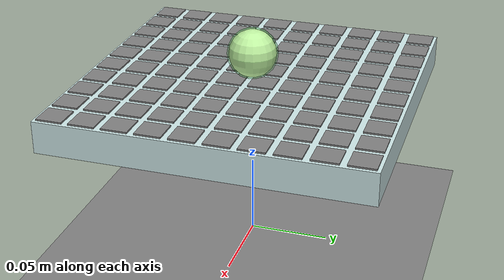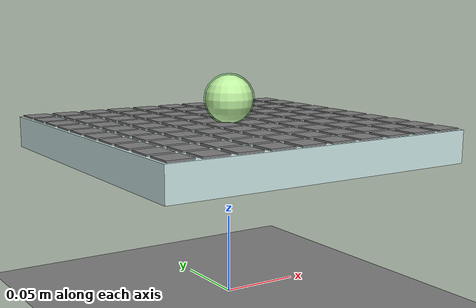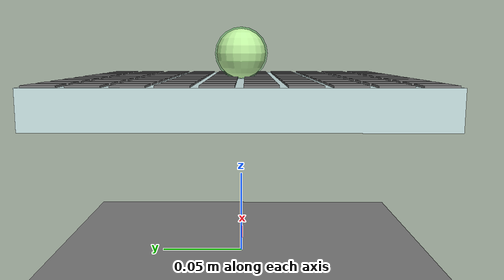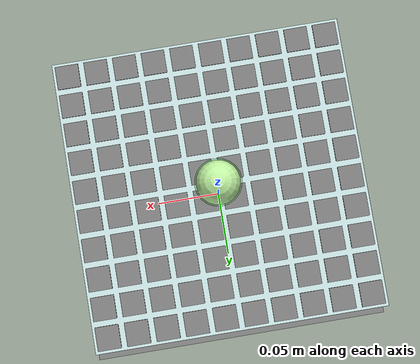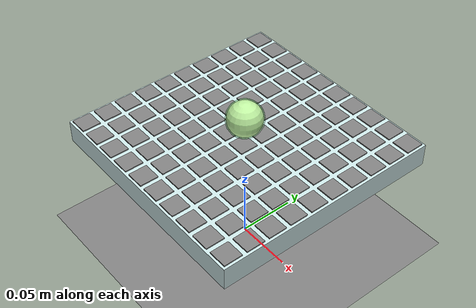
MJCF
<mujoco>
   <compiler angle='radian' meshdir='.' texturedir='.' />

    <worldbody>
        <light directional='false' diffuse='.7 .7 .7' specular='0.03 0.03 0.03' pos='-.1 -.1 1.0' dir='.1 .1 -1'/>
        <geom name='grond' type='plane' size='2 2 .1'/>

        <body name='plate' pos='0 0 .1'>
            <site name='target' pos='0 0 0.025' rgba='0 1 0 .2' size='0.016'/>
            <geom type='box' size='0.1 0.1 0.01' rgba='.8 .9 .9 1'/>
            <joint name='xPlate' damping='.1' type='hinge' axis='1 0 0' limited='true' range='-.5 .5'/>
            <joint name='yPlate' damping='.1' type='hinge' axis='0 1 0' limited='true' range='-.5 .5'/>

            <site name='t00'  type='box' size='0.008 0.008 0.001'  pos='-0.090 -0.090 0.01'/>
            <site name='t01'  type='box' size='0.008 0.008 0.001'  pos='-0.090 -0.070 0.01'/>
            <site name='t02'  type='box' size='0.008 0.008 0.001'  pos='-0.090 -0.050 0.01'/>
            <site name='t03'  type='box' size='0.008 0.008 0.001'  pos='-0.090 -0.030 0.01'/>
            <site name='t04'  type='box' size='0.008 0.008 0.001'  pos='-0.090 -0.010 0.01'/>
            <site name='t05'  type='box' size='0.008 0.008 0.001'  pos='-0.090 0.010 0.01'/>
            <site name='t06'  type='box' size='0.008 0.008 0.001'  pos='-0.090 0.030 0.01'/>
            <site name='t07'  type='box' size='0.008 0.008 0.001'  pos='-0.090 0.050 0.01'/>
            <site name='t08'  type='box' size='0.008 0.008 0.001'  pos='-0.090 0.070 0.01'/>
            <site name='t09'  type='box' size='0.008 0.008 0.001'  pos='-0.090 0.090 0.01'/>
            <site name='t10'  type='box' size='0.008 0.008 0.001'  pos='-0.070 -0.090 0.01'/>
            <site name='t11'  type='box' size='0.008 0.008 0.001'  pos='-0.070 -0.070 0.01'/>
            <site name='t12'  type='box' size='0.008 0.008 0.001'  pos='-0.070 -0.050 0.01'/>
            <site name='t13'  type='box' size='0.008 0.008 0.001'  pos='-0.070 -0.030 0.01'/>
            <site name='t14'  type='box' size='0.008 0.008 0.001'  pos='-0.070 -0.010 0.01'/>
            <site name='t15'  type='box' size='0.008 0.008 0.001'  pos='-0.070 0.010 0.01'/>
            <site name='t16'  type='box' size='0.008 0.008 0.001'  pos='-0.070 0.030 0.01'/>
            <site name='t17'  type='box' size='0.008 0.008 0.001'  pos='-0.070 0.050 0.01'/>
            <site name='t18'  type='box' size='0.008 0.008 0.001'  pos='-0.070 0.070 0.01'/>
            <site name='t19'  type='box' size='0.008 0.008 0.001'  pos='-0.070 0.090 0.01'/>
            <site name='t20'  type='box' size='0.008 0.008 0.001'  pos='-0.050 -0.090 0.01'/>
            <site name='t21'  type='box' size='0.008 0.008 0.001'  pos='-0.050 -0.070 0.01'/>
            <site name='t22'  type='box' size='0.008 0.008 0.001'  pos='-0.050 -0.050 0.01'/>
            <site name='t23'  type='box' size='0.008 0.008 0.001'  pos='-0.050 -0.030 0.01'/>
            <site name='t24'  type='box' size='0.008 0.008 0.001'  pos='-0.050 -0.010 0.01'/>
            <site name='t25'  type='box' size='0.008 0.008 0.001'  pos='-0.050 0.010 0.01'/>
            <site name='t26'  type='box' size='0.008 0.008 0.001'  pos='-0.050 0.030 0.01'/>
            <site name='t27'  type='box' size='0.008 0.008 0.001'  pos='-0.050 0.050 0.01'/>
            <site name='t28'  type='box' size='0.008 0.008 0.001'  pos='-0.050 0.070 0.01'/>
            <site name='t29'  type='box' size='0.008 0.008 0.001'  pos='-0.050 0.090 0.01'/>
            <site name='t30'  type='box' size='0.008 0.008 0.001'  pos='-0.030 -0.090 0.01'/>
            <site name='t31'  type='box' size='0.008 0.008 0.001'  pos='-0.030 -0.070 0.01'/>
            <site name='t32'  type='box' size='0.008 0.008 0.001'  pos='-0.030 -0.050 0.01'/>
            <site name='t33'  type='box' size='0.008 0.008 0.001'  pos='-0.030 -0.030 0.01'/>
            <site name='t34'  type='box' size='0.008 0.008 0.001'  pos='-0.030 -0.010 0.01'/>
            <site name='t35'  type='box' size='0.008 0.008 0.001'  pos='-0.030 0.010 0.01'/>
            <site name='t36'  type='box' size='0.008 0.008 0.001'  pos='-0.030 0.030 0.01'/>
            <site name='t37'  type='box' size='0.008 0.008 0.001'  pos='-0.030 0.050 0.01'/>
            <site name='t38'  type='box' size='0.008 0.008 0.001'  pos='-0.030 0.070 0.01'/>
            <site name='t39'  type='box' size='0.008 0.008 0.001'  pos='-0.030 0.090 0.01'/>
            <site name='t40'  type='box' size='0.008 0.008 0.001'  pos='-0.010 -0.090 0.01'/>
            <site name='t41'  type='box' size='0.008 0.008 0.001'  pos='-0.010 -0.070 0.01'/>
            <site name='t42'  type='box' size='0.008 0.008 0.001'  pos='-0.010 -0.050 0.01'/>
            <site name='t43'  type='box' size='0.008 0.008 0.001'  pos='-0.010 -0.030 0.01'/>
            <site name='t44'  type='box' size='0.008 0.008 0.001'  pos='-0.010 -0.010 0.01'/>
            <site name='t45'  type='box' size='0.008 0.008 0.001'  pos='-0.010 0.010 0.01'/>
            <site name='t46'  type='box' size='0.008 0.008 0.001'  pos='-0.010 0.030 0.01'/>
            <site name='t47'  type='box' size='0.008 0.008 0.001'  pos='-0.010 0.050 0.01'/>
            <site name='t48'  type='box' size='0.008 0.008 0.001'  pos='-0.010 0.070 0.01'/>
            <site name='t49'  type='box' size='0.008 0.008 0.001'  pos='-0.010 0.090 0.01'/>
            <site name='t50'  type='box' size='0.008 0.008 0.001'  pos='0.010 -0.090 0.01'/>
            <site name='t51'  type='box' size='0.008 0.008 0.001'  pos='0.010 -0.070 0.01'/>
            <site name='t52'  type='box' size='0.008 0.008 0.001'  pos='0.010 -0.050 0.01'/>
            <site name='t53'  type='box' size='0.008 0.008 0.001'  pos='0.010 -0.030 0.01'/>
            <site name='t54'  type='box' size='0.008 0.008 0.001'  pos='0.010 -0.010 0.01'/>
            <site name='t55'  type='box' size='0.008 0.008 0.001'  pos='0.010 0.010 0.01'/>
            <site name='t56'  type='box' size='0.008 0.008 0.001'  pos='0.010 0.030 0.01'/>
            <site name='t57'  type='box' size='0.008 0.008 0.001'  pos='0.010 0.050 0.01'/>
            <site name='t58'  type='box' size='0.008 0.008 0.001'  pos='0.010 0.070 0.01'/>
            <site name='t59'  type='box' size='0.008 0.008 0.001'  pos='0.010 0.090 0.01'/>
            <site name='t60'  type='box' size='0.008 0.008 0.001'  pos='0.030 -0.090 0.01'/>
            <site name='t61'  type='box' size='0.008 0.008 0.001'  pos='0.030 -0.070 0.01'/>
            <site name='t62'  type='box' size='0.008 0.008 0.001'  pos='0.030 -0.050 0.01'/>
            <site name='t63'  type='box' size='0.008 0.008 0.001'  pos='0.030 -0.030 0.01'/>
            <site name='t64'  type='box' size='0.008 0.008 0.001'  pos='0.030 -0.010 0.01'/>
            <site name='t65'  type='box' size='0.008 0.008 0.001'  pos='0.030 0.010 0.01'/>
            <site name='t66'  type='box' size='0.008 0.008 0.001'  pos='0.030 0.030 0.01'/>
            <site name='t67'  type='box' size='0.008 0.008 0.001'  pos='0.030 0.050 0.01'/>
            <site name='t68'  type='box' size='0.008 0.008 0.001'  pos='0.030 0.070 0.01'/>
            <site name='t69'  type='box' size='0.008 0.008 0.001'  pos='0.030 0.090 0.01'/>
            <site name='t70'  type='box' size='0.008 0.008 0.001'  pos='0.050 -0.090 0.01'/>
            <site name='t71'  type='box' size='0.008 0.008 0.001'  pos='0.050 -0.070 0.01'/>
            <site name='t72'  type='box' size='0.008 0.008 0.001'  pos='0.050 -0.050 0.01'/>
            <site name='t73'  type='box' size='0.008 0.008 0.001'  pos='0.050 -0.030 0.01'/>
            <site name='t74'  type='box' size='0.008 0.008 0.001'  pos='0.050 -0.010 0.01'/>
            <site name='t75'  type='box' size='0.008 0.008 0.001'  pos='0.050 0.010 0.01'/>
            <site name='t76'  type='box' size='0.008 0.008 0.001'  pos='0.050 0.030 0.01'/>
            <site name='t77'  type='box' size='0.008 0.008 0.001'  pos='0.050 0.050 0.01'/>
            <site name='t78'  type='box' size='0.008 0.008 0.001'  pos='0.050 0.070 0.01'/>
            <site name='t79'  type='box' size='0.008 0.008 0.001'  pos='0.050 0.090 0.01'/>
            <site name='t80'  type='box' size='0.008 0.008 0.001'  pos='0.070 -0.090 0.01'/>
            <site name='t81'  type='box' size='0.008 0.008 0.001'  pos='0.070 -0.070 0.01'/>
            <site name='t82'  type='box' size='0.008 0.008 0.001'  pos='0.070 -0.050 0.01'/>
            <site name='t83'  type='box' size='0.008 0.008 0.001'  pos='0.070 -0.030 0.01'/>
            <site name='t84'  type='box' size='0.008 0.008 0.001'  pos='0.070 -0.010 0.01'/>
            <site name='t85'  type='box' size='0.008 0.008 0.001'  pos='0.070 0.010 0.01'/>
            <site name='t86'  type='box' size='0.008 0.008 0.001'  pos='0.070 0.030 0.01'/>
            <site name='t87'  type='box' size='0.008 0.008 0.001'  pos='0.070 0.050 0.01'/>
            <site name='t88'  type='box' size='0.008 0.008 0.001'  pos='0.070 0.070 0.01'/>
            <site name='t89'  type='box' size='0.008 0.008 0.001'  pos='0.070 0.090 0.01'/>
            <site name='t90'  type='box' size='0.008 0.008 0.001'  pos='0.090 -0.090 0.01'/>
            <site name='t91'  type='box' size='0.008 0.008 0.001'  pos='0.090 -0.070 0.01'/>
            <site name='t92'  type='box' size='0.008 0.008 0.001'  pos='0.090 -0.050 0.01'/>
            <site name='t93'  type='box' size='0.008 0.008 0.001'  pos='0.090 -0.030 0.01'/>
            <site name='t94'  type='box' size='0.008 0.008 0.001'  pos='0.090 -0.010 0.01'/>
            <site name='t95'  type='box' size='0.008 0.008 0.001'  pos='0.090 0.010 0.01'/>
            <site name='t96'  type='box' size='0.008 0.008 0.001'  pos='0.090 0.030 0.01'/>
            <site name='t97'  type='box' size='0.008 0.008 0.001'  pos='0.090 0.050 0.01'/>
            <site name='t98'  type='box' size='0.008 0.008 0.001'  pos='0.090 0.070 0.01'/>
            <site name='t99'  type='box' size='0.008 0.008 0.001'  pos='0.090 0.090 0.01'/>

        </body>

        <body name='ball' pos='0 0 .125'>
            <geom type='sphere' size='0.015' rgba='.95 .95 .8 1'/>
            <freejoint/>>
        </body>
    </worldbody>

    <sensor>
        <touch name='s0.0' site='t00'/>
<touch name='s0.1' site='t01'/>
<touch name='s0.2' site='t02'/>
<touch name='s0.3' site='t03'/>
<touch name='s0.4' site='t04'/>
<touch name='s0.5' site='t05'/>
<touch name='s0.6' site='t06'/>
<touch name='s0.7' site='t07'/>
<touch name='s0.8' site='t08'/>
<touch name='s0.9' site='t09'/>
<touch name='s1.0' site='t10'/>
<touch name='s1.1' site='t11'/>
<touch name='s1.2' site='t12'/>
<touch name='s1.3' site='t13'/>
<touch name='s1.4' site='t14'/>
<touch name='s1.5' site='t15'/>
<touch name='s1.6' site='t16'/>
<touch name='s1.7' site='t17'/>
<touch name='s1.8' site='t18'/>
<touch name='s1.9' site='t19'/>
<touch name='s2.0' site='t20'/>
<touch name='s2.1' site='t21'/>
<touch name='s2.2' site='t22'/>
<touch name='s2.3' site='t23'/>
<touch name='s2.4' site='t24'/>
<touch name='s2.5' site='t25'/>
<touch name='s2.6' site='t26'/>
<touch name='s2.7' site='t27'/>
<touch name='s2.8' site='t28'/>
<touch name='s2.9' site='t29'/>
<touch name='s3.0' site='t30'/>
<touch name='s3.1' site='t31'/>
<touch name='s3.2' site='t32'/>
<touch name='s3.3' site='t33'/>
<touch name='s3.4' site='t34'/>
<touch name='s3.5' site='t35'/>
<touch name='s3.6' site='t36'/>
<touch name='s3.7' site='t37'/>
<touch name='s3.8' site='t38'/>
<touch name='s3.9' site='t39'/>
<touch name='s4.0' site='t40'/>
<touch name='s4.1' site='t41'/>
<touch name='s4.2' site='t42'/>
<touch name='s4.3' site='t43'/>
<touch name='s4.4' site='t44'/>
<touch name='s4.5' site='t45'/>
<touch name='s4.6' site='t46'/>
<touch name='s4.7' site='t47'/>
<touch name='s4.8' site='t48'/>
<touch name='s4.9' site='t49'/>
<touch name='s5.0' site='t50'/>
<touch name='s5.1' site='t51'/>
<touch name='s5.2' site='t52'/>
<touch name='s5.3' site='t53'/>
<touch name='s5.4' site='t54'/>
<touch name='s5.5' site='t55'/>
<touch name='s5.6' site='t56'/>
<touch name='s5.7' site='t57'/>
<touch name='s5.8' site='t58'/>
<touch name='s5.9' site='t59'/>
<touch name='s6.0' site='t60'/>
<touch name='s6.1' site='t61'/>
<touch name='s6.2' site='t62'/>
<touch name='s6.3' site='t63'/>
<touch name='s6.4' site='t64'/>
<touch name='s6.5' site='t65'/>
<touch name='s6.6' site='t66'/>
<touch name='s6.7' site='t67'/>
<touch name='s6.8' site='t68'/>
<touch name='s6.9' site='t69'/>
<touch name='s7.0' site='t70'/>
<touch name='s7.1' site='t71'/>
<touch name='s7.2' site='t72'/>
<touch name='s7.3' site='t73'/>
<touch name='s7.4' site='t74'/>
<touch name='s7.5' site='t75'/>
<touch name='s7.6' site='t76'/>
<touch name='s7.7' site='t77'/>
<touch name='s7.8' site='t78'/>
<touch name='s7.9' site='t79'/>
<touch name='s8.0' site='t80'/>
<touch name='s8.1' site='t81'/>
<touch name='s8.2' site='t82'/>
<touch name='s8.3' site='t83'/>
<touch name='s8.4' site='t84'/>
<touch name='s8.5' site='t85'/>
<touch name='s8.6' site='t86'/>
<touch name='s8.7' site='t87'/>
<touch name='s8.8' site='t88'/>
<touch name='s8.9' site='t89'/>
<touch name='s9.0' site='t90'/>
<touch name='s9.1' site='t91'/>
<touch name='s9.2' site='t92'/>
<touch name='s9.3' site='t93'/>
<touch name='s9.4' site='t94'/>
<touch name='s9.5' site='t95'/>
<touch name='s9.6' site='t96'/>
<touch name='s9.7' site='t97'/>
<touch name='s9.8' site='t98'/>
<touch name='s9.9' site='t99'/>

    </sensor>
    <actuator>
        <position name='xPlane' joint='xPlate' ctrlrange='-.5 .5' ctrllimited='true'/>
        <position name='yPlane' joint='yPlate' ctrlrange='-.5 .5' ctrllimited='true'/>
    </actuator>

</mujoco>
